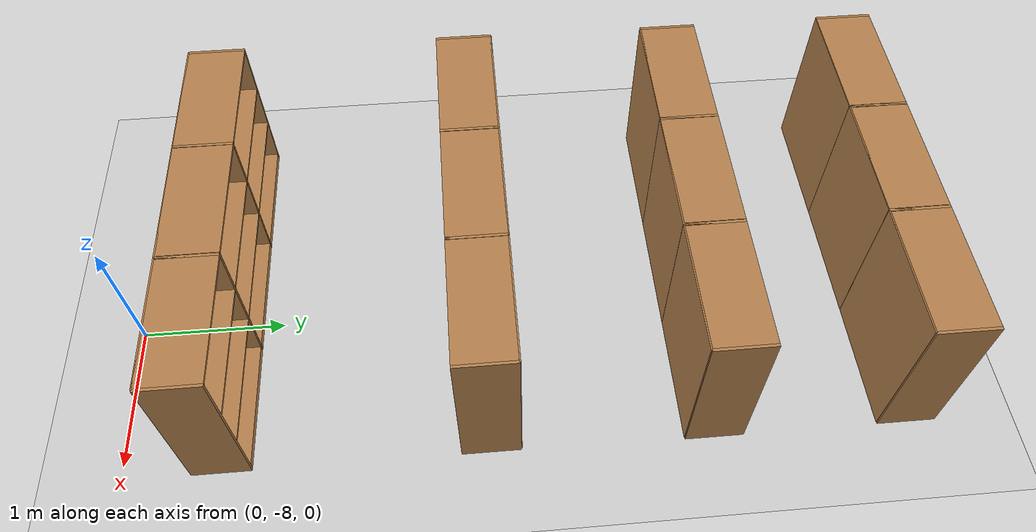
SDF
<sdf version="1.6">
 <world name="default">
  <model name="Bookself-3_0_clone_10_clone_4">
   <model name="bookshelf_0">
    <static>1</static>
    <link name="link">
     <inertial><mass>1</mass></inertial>
     <collision name="back">
      <pose>0 0.005 0.6 0 -0 0</pose>
      <geometry><box><size>0.9 0.01 1.2</size></box></geometry>
     </collision>
     <visual name="visual1">
      <pose>0 0.005 0.6 0 -0 0</pose>
      <geometry><box><size>0.9 0.01 1.2</size></box></geometry>
      <material>
       <script><uri>file://media/materials/scripts/gazebo.material</uri><name>Gazebo/Wood</name></script>
      </material>
     </visual>
     <collision name="left_side">
      <pose>0.45 -0.195 0.6 0 -0 0</pose>
      <geometry><box><size>0.02 0.4 1.2</size></box></geometry>
     </collision>
     <visual name="visual2">
      <pose>0.45 -0.195 0.6 0 -0 0</pose>
      <geometry><box><size>0.02 0.4 1.2</size></box></geometry>
      <material>
       <script><uri>file://media/materials/scripts/gazebo.material</uri><name>Gazebo/Wood</name></script>
      </material>
     </visual>
     <collision name="right_side">
      <pose>-0.45 -0.195 0.6 0 -0 0</pose>
      <geometry><box><size>0.02 0.4 1.2</size></box></geometry>
     </collision>
     <visual name="visual3">
      <pose>-0.45 -0.195 0.6 0 -0 0</pose>
      <geometry><box><size>0.02 0.4 1.2</size></box></geometry>
      <material>
       <script><uri>file://media/materials/scripts/gazebo.material</uri><name>Gazebo/Wood</name></script>
      </material>
     </visual>
     <collision name="bottom">
      <pose>0 -0.195 0.03 0 -0 0</pose>
      <geometry><box><size>0.88 0.4 0.06</size></box></geometry>
     </collision>
     <visual name="visual4">
      <pose>0 -0.195 0.03 0 -0 0</pose>
      <geometry><box><size>0.88 0.4 0.06</size></box></geometry>
      <material>
       <script><uri>file://media/materials/scripts/gazebo.material</uri><name>Gazebo/Wood</name></script>
      </material>
     </visual>
     <collision name="top">
      <pose>0 -0.195 1.19 0 -0 0</pose>
      <geometry><box><size>0.88 0.4 0.02</size></box></geometry>
     </collision>
     <visual name="visual5">
      <pose>0 -0.195 1.19 0 -0 0</pose>
      <geometry><box><size>0.88 0.4 0.02</size></box></geometry>
      <material>
       <script><uri>file://media/materials/scripts/gazebo.material</uri><name>Gazebo/Wood</name></script>
      </material>
     </visual>
     <collision name="low_shelf">
      <pose>0 -0.195 0.43 0 -0 0</pose>
      <geometry><box><size>0.88 0.4 0.02</size></box></geometry>
     </collision>
     <visual name="visual6">
      <pose>0 -0.195 0.43 0 -0 0</pose>
      <geometry><box><size>0.88 0.4 0.02</size></box></geometry>
      <material>
       <script><uri>file://media/materials/scripts/gazebo.material</uri><name>Gazebo/Wood</name></script>
      </material>
     </visual>
     <collision name="high_shelf">
      <pose>0 -0.195 0.8 0 -0 0</pose>
      <geometry><box><size>0.88 0.4 0.02</size></box></geometry>
     </collision>
     <visual name="visual7">
      <pose>0 -0.195 0.8 0 -0 0</pose>
      <geometry><box><size>0.88 0.4 0.02</size></box></geometry>
      <material>
       <script><uri>file://media/materials/scripts/gazebo.material</uri><name>Gazebo/Wood</name></script>
      </material>
     </visual>
    </link>
    <pose>-0.903039 0 0 0 -0 0</pose>
   </model>
   <model name="bookshelf_1">
    <static>1</static>
    <link name="link">
     <inertial><mass>1</mass></inertial>
     <collision name="back">
      <pose>0 0.005 0.6 0 -0 0</pose>
      <geometry><box><size>0.9 0.01 1.2</size></box></geometry>
     </collision>
     <visual name="visual1">
      <pose>0 0.005 0.6 0 -0 0</pose>
      <geometry><box><size>0.9 0.01 1.2</size></box></geometry>
      <material>
       <script><uri>file://media/materials/scripts/gazebo.material</uri><name>Gazebo/Wood</name></script>
      </material>
     </visual>
     <collision name="left_side">
      <pose>0.45 -0.195 0.6 0 -0 0</pose>
      <geometry><box><size>0.02 0.4 1.2</size></box></geometry>
     </collision>
     <visual name="visual2">
      <pose>0.45 -0.195 0.6 0 -0 0</pose>
      <geometry><box><size>0.02 0.4 1.2</size></box></geometry>
      <material>
       <script><uri>file://media/materials/scripts/gazebo.material</uri><name>Gazebo/Wood</name></script>
      </material>
     </visual>
     <collision name="right_side">
      <pose>-0.45 -0.195 0.6 0 -0 0</pose>
      <geometry><box><size>0.02 0.4 1.2</size></box></geometry>
     </collision>
     <visual name="visual3">
      <pose>-0.45 -0.195 0.6 0 -0 0</pose>
      <geometry><box><size>0.02 0.4 1.2</size></box></geometry>
      <material>
       <script><uri>file://media/materials/scripts/gazebo.material</uri><name>Gazebo/Wood</name></script>
      </material>
     </visual>
     <collision name="bottom">
      <pose>0 -0.195 0.03 0 -0 0</pose>
      <geometry><box><size>0.88 0.4 0.06</size></box></geometry>
     </collision>
     <visual name="visual4">
      <pose>0 -0.195 0.03 0 -0 0</pose>
      <geometry><box><size>0.88 0.4 0.06</size></box></geometry>
      <material>
       <script><uri>file://media/materials/scripts/gazebo.material</uri><name>Gazebo/Wood</name></script>
      </material>
     </visual>
     <collision name="top">
      <pose>0 -0.195 1.19 0 -0 0</pose>
      <geometry><box><size>0.88 0.4 0.02</size></box></geometry>
     </collision>
     <visual name="visual5">
      <pose>0 -0.195 1.19 0 -0 0</pose>
      <geometry><box><size>0.88 0.4 0.02</size></box></geometry>
      <material>
       <script><uri>file://media/materials/scripts/gazebo.material</uri><name>Gazebo/Wood</name></script>
      </material>
     </visual>
     <collision name="low_shelf">
      <pose>0 -0.195 0.43 0 -0 0</pose>
      <geometry><box><size>0.88 0.4 0.02</size></box></geometry>
     </collision>
     <visual name="visual6">
      <pose>0 -0.195 0.43 0 -0 0</pose>
      <geometry><box><size>0.88 0.4 0.02</size></box></geometry>
      <material>
       <script><uri>file://media/materials/scripts/gazebo.material</uri><name>Gazebo/Wood</name></script>
      </material>
     </visual>
     <collision name="high_shelf">
      <pose>0 -0.195 0.8 0 -0 0</pose>
      <geometry><box><size>0.88 0.4 0.02</size></box></geometry>
     </collision>
     <visual name="visual7">
      <pose>0 -0.195 0.8 0 -0 0</pose>
      <geometry><box><size>0.88 0.4 0.02</size></box></geometry>
      <material>
       <script><uri>file://media/materials/scripts/gazebo.material</uri><name>Gazebo/Wood</name></script>
      </material>
     </visual>
    </link>
    <pose>0.000535 0 0 0 -0 0</pose>
   </model>
   <model name="bookshelf_1_clone">
    <static>1</static>
    <link name="link">
     <inertial><mass>1</mass></inertial>
     <collision name="back">
      <pose>0 0.005 0.6 0 -0 0</pose>
      <geometry><box><size>0.9 0.01 1.2</size></box></geometry>
     </collision>
     <visual name="visual1">
      <pose>0 0.005 0.6 0 -0 0</pose>
      <geometry><box><size>0.9 0.01 1.2</size></box></geometry>
      <material>
       <script><uri>file://media/materials/scripts/gazebo.material</uri><name>Gazebo/Wood</name></script>
      </material>
     </visual>
     <collision name="left_side">
      <pose>0.45 -0.195 0.6 0 -0 0</pose>
      <geometry><box><size>0.02 0.4 1.2</size></box></geometry>
     </collision>
     <visual name="visual2">
      <pose>0.45 -0.195 0.6 0 -0 0</pose>
      <geometry><box><size>0.02 0.4 1.2</size></box></geometry>
      <material>
       <script><uri>file://media/materials/scripts/gazebo.material</uri><name>Gazebo/Wood</name></script>
      </material>
     </visual>
     <collision name="right_side">
      <pose>-0.45 -0.195 0.6 0 -0 0</pose>
      <geometry><box><size>0.02 0.4 1.2</size></box></geometry>
     </collision>
     <visual name="visual3">
      <pose>-0.45 -0.195 0.6 0 -0 0</pose>
      <geometry><box><size>0.02 0.4 1.2</size></box></geometry>
      <material>
       <script><uri>file://media/materials/scripts/gazebo.material</uri><name>Gazebo/Wood</name></script>
      </material>
     </visual>
     <collision name="bottom">
      <pose>0 -0.195 0.03 0 -0 0</pose>
      <geometry><box><size>0.88 0.4 0.06</size></box></geometry>
     </collision>
     <visual name="visual4">
      <pose>0 -0.195 0.03 0 -0 0</pose>
      <geometry><box><size>0.88 0.4 0.06</size></box></geometry>
      <material>
       <script><uri>file://media/materials/scripts/gazebo.material</uri><name>Gazebo/Wood</name></script>
      </material>
     </visual>
     <collision name="top">
      <pose>0 -0.195 1.19 0 -0 0</pose>
      <geometry><box><size>0.88 0.4 0.02</size></box></geometry>
     </collision>
     <visual name="visual5">
      <pose>0 -0.195 1.19 0 -0 0</pose>
      <geometry><box><size>0.88 0.4 0.02</size></box></geometry>
      <material>
       <script><uri>file://media/materials/scripts/gazebo.material</uri><name>Gazebo/Wood</name></script>
      </material>
     </visual>
     <collision name="low_shelf">
      <pose>0 -0.195 0.43 0 -0 0</pose>
      <geometry><box><size>0.88 0.4 0.02</size></box></geometry>
     </collision>
     <visual name="visual6">
      <pose>0 -0.195 0.43 0 -0 0</pose>
      <geometry><box><size>0.88 0.4 0.02</size></box></geometry>
      <material>
       <script><uri>file://media/materials/scripts/gazebo.material</uri><name>Gazebo/Wood</name></script>
      </material>
     </visual>
     <collision name="high_shelf">
      <pose>0 -0.195 0.8 0 -0 0</pose>
      <geometry><box><size>0.88 0.4 0.02</size></box></geometry>
     </collision>
     <visual name="visual7">
      <pose>0 -0.195 0.8 0 -0 0</pose>
      <geometry><box><size>0.88 0.4 0.02</size></box></geometry>
      <material>
       <script><uri>file://media/materials/scripts/gazebo.material</uri><name>Gazebo/Wood</name></script>
      </material>
     </visual>
    </link>
    <pose>0.902502 0 0 0 -0 0</pose>
   </model>
   <static>1</static>
   <pose>-0.239731 -2.93796 0 0 -0 3.14159</pose>
  </model>
  <model name="Bookself-3_0_clone_10_clone_5">
   <model name="bookshelf_0">
    <static>1</static>
    <link name="link">
     <inertial><mass>1</mass></inertial>
     <collision name="back">
      <pose>0 0.005 0.6 0 -0 0</pose>
      <geometry><box><size>0.9 0.01 1.2</size></box></geometry>
     </collision>
     <visual name="visual1">
      <pose>0 0.005 0.6 0 -0 0</pose>
      <geometry><box><size>0.9 0.01 1.2</size></box></geometry>
      <material>
       <script><uri>file://media/materials/scripts/gazebo.material</uri><name>Gazebo/Wood</name></script>
      </material>
     </visual>
     <collision name="left_side">
      <pose>0.45 -0.195 0.6 0 -0 0</pose>
      <geometry><box><size>0.02 0.4 1.2</size></box></geometry>
     </collision>
     <visual name="visual2">
      <pose>0.45 -0.195 0.6 0 -0 0</pose>
      <geometry><box><size>0.02 0.4 1.2</size></box></geometry>
      <material>
       <script><uri>file://media/materials/scripts/gazebo.material</uri><name>Gazebo/Wood</name></script>
      </material>
     </visual>
     <collision name="right_side">
      <pose>-0.45 -0.195 0.6 0 -0 0</pose>
      <geometry><box><size>0.02 0.4 1.2</size></box></geometry>
     </collision>
     <visual name="visual3">
      <pose>-0.45 -0.195 0.6 0 -0 0</pose>
      <geometry><box><size>0.02 0.4 1.2</size></box></geometry>
      <material>
       <script><uri>file://media/materials/scripts/gazebo.material</uri><name>Gazebo/Wood</name></script>
      </material>
     </visual>
     <collision name="bottom">
      <pose>0 -0.195 0.03 0 -0 0</pose>
      <geometry><box><size>0.88 0.4 0.06</size></box></geometry>
     </collision>
     <visual name="visual4">
      <pose>0 -0.195 0.03 0 -0 0</pose>
      <geometry><box><size>0.88 0.4 0.06</size></box></geometry>
      <material>
       <script><uri>file://media/materials/scripts/gazebo.material</uri><name>Gazebo/Wood</name></script>
      </material>
     </visual>
     <collision name="top">
      <pose>0 -0.195 1.19 0 -0 0</pose>
      <geometry><box><size>0.88 0.4 0.02</size></box></geometry>
     </collision>
     <visual name="visual5">
      <pose>0 -0.195 1.19 0 -0 0</pose>
      <geometry><box><size>0.88 0.4 0.02</size></box></geometry>
      <material>
       <script><uri>file://media/materials/scripts/gazebo.material</uri><name>Gazebo/Wood</name></script>
      </material>
     </visual>
     <collision name="low_shelf">
      <pose>0 -0.195 0.43 0 -0 0</pose>
      <geometry><box><size>0.88 0.4 0.02</size></box></geometry>
     </collision>
     <visual name="visual6">
      <pose>0 -0.195 0.43 0 -0 0</pose>
      <geometry><box><size>0.88 0.4 0.02</size></box></geometry>
      <material>
       <script><uri>file://media/materials/scripts/gazebo.material</uri><name>Gazebo/Wood</name></script>
      </material>
     </visual>
     <collision name="high_shelf">
      <pose>0 -0.195 0.8 0 -0 0</pose>
      <geometry><box><size>0.88 0.4 0.02</size></box></geometry>
     </collision>
     <visual name="visual7">
      <pose>0 -0.195 0.8 0 -0 0</pose>
      <geometry><box><size>0.88 0.4 0.02</size></box></geometry>
      <material>
       <script><uri>file://media/materials/scripts/gazebo.material</uri><name>Gazebo/Wood</name></script>
      </material>
     </visual>
    </link>
    <pose>-0.903039 0 0 0 -0 0</pose>
   </model>
   <model name="bookshelf_1">
    <static>1</static>
    <link name="link">
     <inertial><mass>1</mass></inertial>
     <collision name="back">
      <pose>0 0.005 0.6 0 -0 0</pose>
      <geometry><box><size>0.9 0.01 1.2</size></box></geometry>
     </collision>
     <visual name="visual1">
      <pose>0 0.005 0.6 0 -0 0</pose>
      <geometry><box><size>0.9 0.01 1.2</size></box></geometry>
      <material>
       <script><uri>file://media/materials/scripts/gazebo.material</uri><name>Gazebo/Wood</name></script>
      </material>
     </visual>
     <collision name="left_side">
      <pose>0.45 -0.195 0.6 0 -0 0</pose>
      <geometry><box><size>0.02 0.4 1.2</size></box></geometry>
     </collision>
     <visual name="visual2">
      <pose>0.45 -0.195 0.6 0 -0 0</pose>
      <geometry><box><size>0.02 0.4 1.2</size></box></geometry>
      <material>
       <script><uri>file://media/materials/scripts/gazebo.material</uri><name>Gazebo/Wood</name></script>
      </material>
     </visual>
     <collision name="right_side">
      <pose>-0.45 -0.195 0.6 0 -0 0</pose>
      <geometry><box><size>0.02 0.4 1.2</size></box></geometry>
     </collision>
     <visual name="visual3">
      <pose>-0.45 -0.195 0.6 0 -0 0</pose>
      <geometry><box><size>0.02 0.4 1.2</size></box></geometry>
      <material>
       <script><uri>file://media/materials/scripts/gazebo.material</uri><name>Gazebo/Wood</name></script>
      </material>
     </visual>
     <collision name="bottom">
      <pose>0 -0.195 0.03 0 -0 0</pose>
      <geometry><box><size>0.88 0.4 0.06</size></box></geometry>
     </collision>
     <visual name="visual4">
      <pose>0 -0.195 0.03 0 -0 0</pose>
      <geometry><box><size>0.88 0.4 0.06</size></box></geometry>
      <material>
       <script><uri>file://media/materials/scripts/gazebo.material</uri><name>Gazebo/Wood</name></script>
      </material>
     </visual>
     <collision name="top">
      <pose>0 -0.195 1.19 0 -0 0</pose>
      <geometry><box><size>0.88 0.4 0.02</size></box></geometry>
     </collision>
     <visual name="visual5">
      <pose>0 -0.195 1.19 0 -0 0</pose>
      <geometry><box><size>0.88 0.4 0.02</size></box></geometry>
      <material>
       <script><uri>file://media/materials/scripts/gazebo.material</uri><name>Gazebo/Wood</name></script>
      </material>
     </visual>
     <collision name="low_shelf">
      <pose>0 -0.195 0.43 0 -0 0</pose>
      <geometry><box><size>0.88 0.4 0.02</size></box></geometry>
     </collision>
     <visual name="visual6">
      <pose>0 -0.195 0.43 0 -0 0</pose>
      <geometry><box><size>0.88 0.4 0.02</size></box></geometry>
      <material>
       <script><uri>file://media/materials/scripts/gazebo.material</uri><name>Gazebo/Wood</name></script>
      </material>
     </visual>
     <collision name="high_shelf">
      <pose>0 -0.195 0.8 0 -0 0</pose>
      <geometry><box><size>0.88 0.4 0.02</size></box></geometry>
     </collision>
     <visual name="visual7">
      <pose>0 -0.195 0.8 0 -0 0</pose>
      <geometry><box><size>0.88 0.4 0.02</size></box></geometry>
      <material>
       <script><uri>file://media/materials/scripts/gazebo.material</uri><name>Gazebo/Wood</name></script>
      </material>
     </visual>
    </link>
    <pose>0.000535 0 0 0 -0 0</pose>
   </model>
   <model name="bookshelf_1_clone">
    <static>1</static>
    <link name="link">
     <inertial><mass>1</mass></inertial>
     <collision name="back">
      <pose>0 0.005 0.6 0 -0 0</pose>
      <geometry><box><size>0.9 0.01 1.2</size></box></geometry>
     </collision>
     <visual name="visual1">
      <pose>0 0.005 0.6 0 -0 0</pose>
      <geometry><box><size>0.9 0.01 1.2</size></box></geometry>
      <material>
       <script><uri>file://media/materials/scripts/gazebo.material</uri><name>Gazebo/Wood</name></script>
      </material>
     </visual>
     <collision name="left_side">
      <pose>0.45 -0.195 0.6 0 -0 0</pose>
      <geometry><box><size>0.02 0.4 1.2</size></box></geometry>
     </collision>
     <visual name="visual2">
      <pose>0.45 -0.195 0.6 0 -0 0</pose>
      <geometry><box><size>0.02 0.4 1.2</size></box></geometry>
      <material>
       <script><uri>file://media/materials/scripts/gazebo.material</uri><name>Gazebo/Wood</name></script>
      </material>
     </visual>
     <collision name="right_side">
      <pose>-0.45 -0.195 0.6 0 -0 0</pose>
      <geometry><box><size>0.02 0.4 1.2</size></box></geometry>
     </collision>
     <visual name="visual3">
      <pose>-0.45 -0.195 0.6 0 -0 0</pose>
      <geometry><box><size>0.02 0.4 1.2</size></box></geometry>
      <material>
       <script><uri>file://media/materials/scripts/gazebo.material</uri><name>Gazebo/Wood</name></script>
      </material>
     </visual>
     <collision name="bottom">
      <pose>0 -0.195 0.03 0 -0 0</pose>
      <geometry><box><size>0.88 0.4 0.06</size></box></geometry>
     </collision>
     <visual name="visual4">
      <pose>0 -0.195 0.03 0 -0 0</pose>
      <geometry><box><size>0.88 0.4 0.06</size></box></geometry>
      <material>
       <script><uri>file://media/materials/scripts/gazebo.material</uri><name>Gazebo/Wood</name></script>
      </material>
     </visual>
     <collision name="top">
      <pose>0 -0.195 1.19 0 -0 0</pose>
      <geometry><box><size>0.88 0.4 0.02</size></box></geometry>
     </collision>
     <visual name="visual5">
      <pose>0 -0.195 1.19 0 -0 0</pose>
      <geometry><box><size>0.88 0.4 0.02</size></box></geometry>
      <material>
       <script><uri>file://media/materials/scripts/gazebo.material</uri><name>Gazebo/Wood</name></script>
      </material>
     </visual>
     <collision name="low_shelf">
      <pose>0 -0.195 0.43 0 -0 0</pose>
      <geometry><box><size>0.88 0.4 0.02</size></box></geometry>
     </collision>
     <visual name="visual6">
      <pose>0 -0.195 0.43 0 -0 0</pose>
      <geometry><box><size>0.88 0.4 0.02</size></box></geometry>
      <material>
       <script><uri>file://media/materials/scripts/gazebo.material</uri><name>Gazebo/Wood</name></script>
      </material>
     </visual>
     <collision name="high_shelf">
      <pose>0 -0.195 0.8 0 -0 0</pose>
      <geometry><box><size>0.88 0.4 0.02</size></box></geometry>
     </collision>
     <visual name="visual7">
      <pose>0 -0.195 0.8 0 -0 0</pose>
      <geometry><box><size>0.88 0.4 0.02</size></box></geometry>
      <material>
       <script><uri>file://media/materials/scripts/gazebo.material</uri><name>Gazebo/Wood</name></script>
      </material>
     </visual>
    </link>
    <pose>0.902502 0 0 0 -0 0</pose>
   </model>
   <static>1</static>
   <pose>-0.239731 -4.25972 0 0 -0 3.14159</pose>
  </model>
  <model name="Bookself-3_0_clone_10_clone_6">
   <model name="bookshelf_0">
    <static>1</static>
    <link name="link">
     <inertial><mass>1</mass></inertial>
     <collision name="back">
      <pose>0 0.005 0.6 0 -0 0</pose>
      <geometry><box><size>0.9 0.01 1.2</size></box></geometry>
     </collision>
     <visual name="visual1">
      <pose>0 0.005 0.6 0 -0 0</pose>
      <geometry><box><size>0.9 0.01 1.2</size></box></geometry>
      <material>
       <script><uri>file://media/materials/scripts/gazebo.material</uri><name>Gazebo/Wood</name></script>
      </material>
     </visual>
     <collision name="left_side">
      <pose>0.45 -0.195 0.6 0 -0 0</pose>
      <geometry><box><size>0.02 0.4 1.2</size></box></geometry>
     </collision>
     <visual name="visual2">
      <pose>0.45 -0.195 0.6 0 -0 0</pose>
      <geometry><box><size>0.02 0.4 1.2</size></box></geometry>
      <material>
       <script><uri>file://media/materials/scripts/gazebo.material</uri><name>Gazebo/Wood</name></script>
      </material>
     </visual>
     <collision name="right_side">
      <pose>-0.45 -0.195 0.6 0 -0 0</pose>
      <geometry><box><size>0.02 0.4 1.2</size></box></geometry>
     </collision>
     <visual name="visual3">
      <pose>-0.45 -0.195 0.6 0 -0 0</pose>
      <geometry><box><size>0.02 0.4 1.2</size></box></geometry>
      <material>
       <script><uri>file://media/materials/scripts/gazebo.material</uri><name>Gazebo/Wood</name></script>
      </material>
     </visual>
     <collision name="bottom">
      <pose>0 -0.195 0.03 0 -0 0</pose>
      <geometry><box><size>0.88 0.4 0.06</size></box></geometry>
     </collision>
     <visual name="visual4">
      <pose>0 -0.195 0.03 0 -0 0</pose>
      <geometry><box><size>0.88 0.4 0.06</size></box></geometry>
      <material>
       <script><uri>file://media/materials/scripts/gazebo.material</uri><name>Gazebo/Wood</name></script>
      </material>
     </visual>
     <collision name="top">
      <pose>0 -0.195 1.19 0 -0 0</pose>
      <geometry><box><size>0.88 0.4 0.02</size></box></geometry>
     </collision>
     <visual name="visual5">
      <pose>0 -0.195 1.19 0 -0 0</pose>
      <geometry><box><size>0.88 0.4 0.02</size></box></geometry>
      <material>
       <script><uri>file://media/materials/scripts/gazebo.material</uri><name>Gazebo/Wood</name></script>
      </material>
     </visual>
     <collision name="low_shelf">
      <pose>0 -0.195 0.43 0 -0 0</pose>
      <geometry><box><size>0.88 0.4 0.02</size></box></geometry>
     </collision>
     <visual name="visual6">
      <pose>0 -0.195 0.43 0 -0 0</pose>
      <geometry><box><size>0.88 0.4 0.02</size></box></geometry>
      <material>
       <script><uri>file://media/materials/scripts/gazebo.material</uri><name>Gazebo/Wood</name></script>
      </material>
     </visual>
     <collision name="high_shelf">
      <pose>0 -0.195 0.8 0 -0 0</pose>
      <geometry><box><size>0.88 0.4 0.02</size></box></geometry>
     </collision>
     <visual name="visual7">
      <pose>0 -0.195 0.8 0 -0 0</pose>
      <geometry><box><size>0.88 0.4 0.02</size></box></geometry>
      <material>
       <script><uri>file://media/materials/scripts/gazebo.material</uri><name>Gazebo/Wood</name></script>
      </material>
     </visual>
    </link>
    <pose>-0.903039 0 0 0 -0 0</pose>
   </model>
   <model name="bookshelf_1">
    <static>1</static>
    <link name="link">
     <inertial><mass>1</mass></inertial>
     <collision name="back">
      <pose>0 0.005 0.6 0 -0 0</pose>
      <geometry><box><size>0.9 0.01 1.2</size></box></geometry>
     </collision>
     <visual name="visual1">
      <pose>0 0.005 0.6 0 -0 0</pose>
      <geometry><box><size>0.9 0.01 1.2</size></box></geometry>
      <material>
       <script><uri>file://media/materials/scripts/gazebo.material</uri><name>Gazebo/Wood</name></script>
      </material>
     </visual>
     <collision name="left_side">
      <pose>0.45 -0.195 0.6 0 -0 0</pose>
      <geometry><box><size>0.02 0.4 1.2</size></box></geometry>
     </collision>
     <visual name="visual2">
      <pose>0.45 -0.195 0.6 0 -0 0</pose>
      <geometry><box><size>0.02 0.4 1.2</size></box></geometry>
      <material>
       <script><uri>file://media/materials/scripts/gazebo.material</uri><name>Gazebo/Wood</name></script>
      </material>
     </visual>
     <collision name="right_side">
      <pose>-0.45 -0.195 0.6 0 -0 0</pose>
      <geometry><box><size>0.02 0.4 1.2</size></box></geometry>
     </collision>
     <visual name="visual3">
      <pose>-0.45 -0.195 0.6 0 -0 0</pose>
      <geometry><box><size>0.02 0.4 1.2</size></box></geometry>
      <material>
       <script><uri>file://media/materials/scripts/gazebo.material</uri><name>Gazebo/Wood</name></script>
      </material>
     </visual>
     <collision name="bottom">
      <pose>0 -0.195 0.03 0 -0 0</pose>
      <geometry><box><size>0.88 0.4 0.06</size></box></geometry>
     </collision>
     <visual name="visual4">
      <pose>0 -0.195 0.03 0 -0 0</pose>
      <geometry><box><size>0.88 0.4 0.06</size></box></geometry>
      <material>
       <script><uri>file://media/materials/scripts/gazebo.material</uri><name>Gazebo/Wood</name></script>
      </material>
     </visual>
     <collision name="top">
      <pose>0 -0.195 1.19 0 -0 0</pose>
      <geometry><box><size>0.88 0.4 0.02</size></box></geometry>
     </collision>
     <visual name="visual5">
      <pose>0 -0.195 1.19 0 -0 0</pose>
      <geometry><box><size>0.88 0.4 0.02</size></box></geometry>
      <material>
       <script><uri>file://media/materials/scripts/gazebo.material</uri><name>Gazebo/Wood</name></script>
      </material>
     </visual>
     <collision name="low_shelf">
      <pose>0 -0.195 0.43 0 -0 0</pose>
      <geometry><box><size>0.88 0.4 0.02</size></box></geometry>
     </collision>
     <visual name="visual6">
      <pose>0 -0.195 0.43 0 -0 0</pose>
      <geometry><box><size>0.88 0.4 0.02</size></box></geometry>
      <material>
       <script><uri>file://media/materials/scripts/gazebo.material</uri><name>Gazebo/Wood</name></script>
      </material>
     </visual>
     <collision name="high_shelf">
      <pose>0 -0.195 0.8 0 -0 0</pose>
      <geometry><box><size>0.88 0.4 0.02</size></box></geometry>
     </collision>
     <visual name="visual7">
      <pose>0 -0.195 0.8 0 -0 0</pose>
      <geometry><box><size>0.88 0.4 0.02</size></box></geometry>
      <material>
       <script><uri>file://media/materials/scripts/gazebo.material</uri><name>Gazebo/Wood</name></script>
      </material>
     </visual>
    </link>
    <pose>0.000535 0 0 0 -0 0</pose>
   </model>
   <model name="bookshelf_1_clone">
    <static>1</static>
    <link name="link">
     <inertial><mass>1</mass></inertial>
     <collision name="back">
      <pose>0 0.005 0.6 0 -0 0</pose>
      <geometry><box><size>0.9 0.01 1.2</size></box></geometry>
     </collision>
     <visual name="visual1">
      <pose>0 0.005 0.6 0 -0 0</pose>
      <geometry><box><size>0.9 0.01 1.2</size></box></geometry>
      <material>
       <script><uri>file://media/materials/scripts/gazebo.material</uri><name>Gazebo/Wood</name></script>
      </material>
     </visual>
     <collision name="left_side">
      <pose>0.45 -0.195 0.6 0 -0 0</pose>
      <geometry><box><size>0.02 0.4 1.2</size></box></geometry>
     </collision>
     <visual name="visual2">
      <pose>0.45 -0.195 0.6 0 -0 0</pose>
      <geometry><box><size>0.02 0.4 1.2</size></box></geometry>
      <material>
       <script><uri>file://media/materials/scripts/gazebo.material</uri><name>Gazebo/Wood</name></script>
      </material>
     </visual>
     <collision name="right_side">
      <pose>-0.45 -0.195 0.6 0 -0 0</pose>
      <geometry><box><size>0.02 0.4 1.2</size></box></geometry>
     </collision>
     <visual name="visual3">
      <pose>-0.45 -0.195 0.6 0 -0 0</pose>
      <geometry><box><size>0.02 0.4 1.2</size></box></geometry>
      <material>
       <script><uri>file://media/materials/scripts/gazebo.material</uri><name>Gazebo/Wood</name></script>
      </material>
     </visual>
     <collision name="bottom">
      <pose>0 -0.195 0.03 0 -0 0</pose>
      <geometry><box><size>0.88 0.4 0.06</size></box></geometry>
     </collision>
     <visual name="visual4">
      <pose>0 -0.195 0.03 0 -0 0</pose>
      <geometry><box><size>0.88 0.4 0.06</size></box></geometry>
      <material>
       <script><uri>file://media/materials/scripts/gazebo.material</uri><name>Gazebo/Wood</name></script>
      </material>
     </visual>
     <collision name="top">
      <pose>0 -0.195 1.19 0 -0 0</pose>
      <geometry><box><size>0.88 0.4 0.02</size></box></geometry>
     </collision>
     <visual name="visual5">
      <pose>0 -0.195 1.19 0 -0 0</pose>
      <geometry><box><size>0.88 0.4 0.02</size></box></geometry>
      <material>
       <script><uri>file://media/materials/scripts/gazebo.material</uri><name>Gazebo/Wood</name></script>
      </material>
     </visual>
     <collision name="low_shelf">
      <pose>0 -0.195 0.43 0 -0 0</pose>
      <geometry><box><size>0.88 0.4 0.02</size></box></geometry>
     </collision>
     <visual name="visual6">
      <pose>0 -0.195 0.43 0 -0 0</pose>
      <geometry><box><size>0.88 0.4 0.02</size></box></geometry>
      <material>
       <script><uri>file://media/materials/scripts/gazebo.material</uri><name>Gazebo/Wood</name></script>
      </material>
     </visual>
     <collision name="high_shelf">
      <pose>0 -0.195 0.8 0 -0 0</pose>
      <geometry><box><size>0.88 0.4 0.02</size></box></geometry>
     </collision>
     <visual name="visual7">
      <pose>0 -0.195 0.8 0 -0 0</pose>
      <geometry><box><size>0.88 0.4 0.02</size></box></geometry>
      <material>
       <script><uri>file://media/materials/scripts/gazebo.material</uri><name>Gazebo/Wood</name></script>
      </material>
     </visual>
    </link>
    <pose>0.902502 0 0 0 -0 0</pose>
   </model>
   <static>1</static>
   <pose>-0.264254 -7.5444 0 0 -0 3.14159</pose>
  </model>
  <model name="Bookself-3_0_clone_5_clone_0">
   <model name="bookshelf_0">
    <static>1</static>
    <link name="link">
     <inertial><mass>1</mass></inertial>
     <collision name="back">
      <pose>0 0.005 0.6 0 -0 0</pose>
      <geometry><box><size>0.9 0.01 1.2</size></box></geometry>
     </collision>
     <visual name="visual1">
      <pose>0 0.005 0.6 0 -0 0</pose>
      <geometry><box><size>0.9 0.01 1.2</size></box></geometry>
      <material>
       <script><uri>file://media/materials/scripts/gazebo.material</uri><name>Gazebo/Wood</name></script>
      </material>
     </visual>
     <collision name="left_side">
      <pose>0.45 -0.195 0.6 0 -0 0</pose>
      <geometry><box><size>0.02 0.4 1.2</size></box></geometry>
     </collision>
     <visual name="visual2">
      <pose>0.45 -0.195 0.6 0 -0 0</pose>
      <geometry><box><size>0.02 0.4 1.2</size></box></geometry>
      <material>
       <script><uri>file://media/materials/scripts/gazebo.material</uri><name>Gazebo/Wood</name></script>
      </material>
     </visual>
     <collision name="right_side">
      <pose>-0.45 -0.195 0.6 0 -0 0</pose>
      <geometry><box><size>0.02 0.4 1.2</size></box></geometry>
     </collision>
     <visual name="visual3">
      <pose>-0.45 -0.195 0.6 0 -0 0</pose>
      <geometry><box><size>0.02 0.4 1.2</size></box></geometry>
      <material>
       <script><uri>file://media/materials/scripts/gazebo.material</uri><name>Gazebo/Wood</name></script>
      </material>
     </visual>
     <collision name="bottom">
      <pose>0 -0.195 0.03 0 -0 0</pose>
      <geometry><box><size>0.88 0.4 0.06</size></box></geometry>
     </collision>
     <visual name="visual4">
      <pose>0 -0.195 0.03 0 -0 0</pose>
      <geometry><box><size>0.88 0.4 0.06</size></box></geometry>
      <material>
       <script><uri>file://media/materials/scripts/gazebo.material</uri><name>Gazebo/Wood</name></script>
      </material>
     </visual>
     <collision name="top">
      <pose>0 -0.195 1.19 0 -0 0</pose>
      <geometry><box><size>0.88 0.4 0.02</size></box></geometry>
     </collision>
     <visual name="visual5">
      <pose>0 -0.195 1.19 0 -0 0</pose>
      <geometry><box><size>0.88 0.4 0.02</size></box></geometry>
      <material>
       <script><uri>file://media/materials/scripts/gazebo.material</uri><name>Gazebo/Wood</name></script>
      </material>
     </visual>
     <collision name="low_shelf">
      <pose>0 -0.195 0.43 0 -0 0</pose>
      <geometry><box><size>0.88 0.4 0.02</size></box></geometry>
     </collision>
     <visual name="visual6">
      <pose>0 -0.195 0.43 0 -0 0</pose>
      <geometry><box><size>0.88 0.4 0.02</size></box></geometry>
      <material>
       <script><uri>file://media/materials/scripts/gazebo.material</uri><name>Gazebo/Wood</name></script>
      </material>
     </visual>
     <collision name="high_shelf">
      <pose>0 -0.195 0.8 0 -0 0</pose>
      <geometry><box><size>0.88 0.4 0.02</size></box></geometry>
     </collision>
     <visual name="visual7">
      <pose>0 -0.195 0.8 0 -0 0</pose>
      <geometry><box><size>0.88 0.4 0.02</size></box></geometry>
      <material>
       <script><uri>file://media/materials/scripts/gazebo.material</uri><name>Gazebo/Wood</name></script>
      </material>
     </visual>
    </link>
    <pose>-0.903039 0 0 0 -0 0</pose>
   </model>
   <model name="bookshelf_1">
    <static>1</static>
    <link name="link">
     <inertial><mass>1</mass></inertial>
     <collision name="back">
      <pose>0 0.005 0.6 0 -0 0</pose>
      <geometry><box><size>0.9 0.01 1.2</size></box></geometry>
     </collision>
     <visual name="visual1">
      <pose>0 0.005 0.6 0 -0 0</pose>
      <geometry><box><size>0.9 0.01 1.2</size></box></geometry>
      <material>
       <script><uri>file://media/materials/scripts/gazebo.material</uri><name>Gazebo/Wood</name></script>
      </material>
     </visual>
     <collision name="left_side">
      <pose>0.45 -0.195 0.6 0 -0 0</pose>
      <geometry><box><size>0.02 0.4 1.2</size></box></geometry>
     </collision>
     <visual name="visual2">
      <pose>0.45 -0.195 0.6 0 -0 0</pose>
      <geometry><box><size>0.02 0.4 1.2</size></box></geometry>
      <material>
       <script><uri>file://media/materials/scripts/gazebo.material</uri><name>Gazebo/Wood</name></script>
      </material>
     </visual>
     <collision name="right_side">
      <pose>-0.45 -0.195 0.6 0 -0 0</pose>
      <geometry><box><size>0.02 0.4 1.2</size></box></geometry>
     </collision>
     <visual name="visual3">
      <pose>-0.45 -0.195 0.6 0 -0 0</pose>
      <geometry><box><size>0.02 0.4 1.2</size></box></geometry>
      <material>
       <script><uri>file://media/materials/scripts/gazebo.material</uri><name>Gazebo/Wood</name></script>
      </material>
     </visual>
     <collision name="bottom">
      <pose>0 -0.195 0.03 0 -0 0</pose>
      <geometry><box><size>0.88 0.4 0.06</size></box></geometry>
     </collision>
     <visual name="visual4">
      <pose>0 -0.195 0.03 0 -0 0</pose>
      <geometry><box><size>0.88 0.4 0.06</size></box></geometry>
      <material>
       <script><uri>file://media/materials/scripts/gazebo.material</uri><name>Gazebo/Wood</name></script>
      </material>
     </visual>
     <collision name="top">
      <pose>0 -0.195 1.19 0 -0 0</pose>
      <geometry><box><size>0.88 0.4 0.02</size></box></geometry>
     </collision>
     <visual name="visual5">
      <pose>0 -0.195 1.19 0 -0 0</pose>
      <geometry><box><size>0.88 0.4 0.02</size></box></geometry>
      <material>
       <script><uri>file://media/materials/scripts/gazebo.material</uri><name>Gazebo/Wood</name></script>
      </material>
     </visual>
     <collision name="low_shelf">
      <pose>0 -0.195 0.43 0 -0 0</pose>
      <geometry><box><size>0.88 0.4 0.02</size></box></geometry>
     </collision>
     <visual name="visual6">
      <pose>0 -0.195 0.43 0 -0 0</pose>
      <geometry><box><size>0.88 0.4 0.02</size></box></geometry>
      <material>
       <script><uri>file://media/materials/scripts/gazebo.material</uri><name>Gazebo/Wood</name></script>
      </material>
     </visual>
     <collision name="high_shelf">
      <pose>0 -0.195 0.8 0 -0 0</pose>
      <geometry><box><size>0.88 0.4 0.02</size></box></geometry>
     </collision>
     <visual name="visual7">
      <pose>0 -0.195 0.8 0 -0 0</pose>
      <geometry><box><size>0.88 0.4 0.02</size></box></geometry>
      <material>
       <script><uri>file://media/materials/scripts/gazebo.material</uri><name>Gazebo/Wood</name></script>
      </material>
     </visual>
    </link>
    <pose>0.000535 0 0 0 -0 0</pose>
   </model>
   <model name="bookshelf_1_clone">
    <static>1</static>
    <link name="link">
     <inertial><mass>1</mass></inertial>
     <collision name="back">
      <pose>0 0.005 0.6 0 -0 0</pose>
      <geometry><box><size>0.9 0.01 1.2</size></box></geometry>
     </collision>
     <visual name="visual1">
      <pose>0 0.005 0.6 0 -0 0</pose>
      <geometry><box><size>0.9 0.01 1.2</size></box></geometry>
      <material>
       <script><uri>file://media/materials/scripts/gazebo.material</uri><name>Gazebo/Wood</name></script>
      </material>
     </visual>
     <collision name="left_side">
      <pose>0.45 -0.195 0.6 0 -0 0</pose>
      <geometry><box><size>0.02 0.4 1.2</size></box></geometry>
     </collision>
     <visual name="visual2">
      <pose>0.45 -0.195 0.6 0 -0 0</pose>
      <geometry><box><size>0.02 0.4 1.2</size></box></geometry>
      <material>
       <script><uri>file://media/materials/scripts/gazebo.material</uri><name>Gazebo/Wood</name></script>
      </material>
     </visual>
     <collision name="right_side">
      <pose>-0.45 -0.195 0.6 0 -0 0</pose>
      <geometry><box><size>0.02 0.4 1.2</size></box></geometry>
     </collision>
     <visual name="visual3">
      <pose>-0.45 -0.195 0.6 0 -0 0</pose>
      <geometry><box><size>0.02 0.4 1.2</size></box></geometry>
      <material>
       <script><uri>file://media/materials/scripts/gazebo.material</uri><name>Gazebo/Wood</name></script>
      </material>
     </visual>
     <collision name="bottom">
      <pose>0 -0.195 0.03 0 -0 0</pose>
      <geometry><box><size>0.88 0.4 0.06</size></box></geometry>
     </collision>
     <visual name="visual4">
      <pose>0 -0.195 0.03 0 -0 0</pose>
      <geometry><box><size>0.88 0.4 0.06</size></box></geometry>
      <material>
       <script><uri>file://media/materials/scripts/gazebo.material</uri><name>Gazebo/Wood</name></script>
      </material>
     </visual>
     <collision name="top">
      <pose>0 -0.195 1.19 0 -0 0</pose>
      <geometry><box><size>0.88 0.4 0.02</size></box></geometry>
     </collision>
     <visual name="visual5">
      <pose>0 -0.195 1.19 0 -0 0</pose>
      <geometry><box><size>0.88 0.4 0.02</size></box></geometry>
      <material>
       <script><uri>file://media/materials/scripts/gazebo.material</uri><name>Gazebo/Wood</name></script>
      </material>
     </visual>
     <collision name="low_shelf">
      <pose>0 -0.195 0.43 0 -0 0</pose>
      <geometry><box><size>0.88 0.4 0.02</size></box></geometry>
     </collision>
     <visual name="visual6">
      <pose>0 -0.195 0.43 0 -0 0</pose>
      <geometry><box><size>0.88 0.4 0.02</size></box></geometry>
      <material>
       <script><uri>file://media/materials/scripts/gazebo.material</uri><name>Gazebo/Wood</name></script>
      </material>
     </visual>
     <collision name="high_shelf">
      <pose>0 -0.195 0.8 0 -0 0</pose>
      <geometry><box><size>0.88 0.4 0.02</size></box></geometry>
     </collision>
     <visual name="visual7">
      <pose>0 -0.195 0.8 0 -0 0</pose>
      <geometry><box><size>0.88 0.4 0.02</size></box></geometry>
      <material>
       <script><uri>file://media/materials/scripts/gazebo.material</uri><name>Gazebo/Wood</name></script>
      </material>
     </visual>
    </link>
    <pose>0.902502 0 0 0 -0 0</pose>
   </model>
   <static>1</static>
   <pose>-0.259121 -5.37209 0 0 -0 0</pose>
  </model>
  <model name="ground_plane">
   <static>1</static>
   <link name="link">
    <collision name="collision">
     <geometry><plane><normal>0 0 1</normal><size>100 100</size></plane></geometry>
     <surface><friction><ode><mu>100</mu><mu2>50</mu2></ode></friction></surface>
    </collision>
    <visual name="visual">
     <cast_shadows>0</cast_shadows>
     <geometry><plane><normal>0 0 1</normal><size>100 100</size></plane></geometry>
     <material>
      <script><uri>file://media/materials/scripts/gazebo.material</uri><name>Gazebo/Grey</name></script>
     </material>
    </visual>
   </link>
   <pose>1.79627 -1.63715 0 0 -0 0</pose>
  </model>
 </world>
</sdf>
